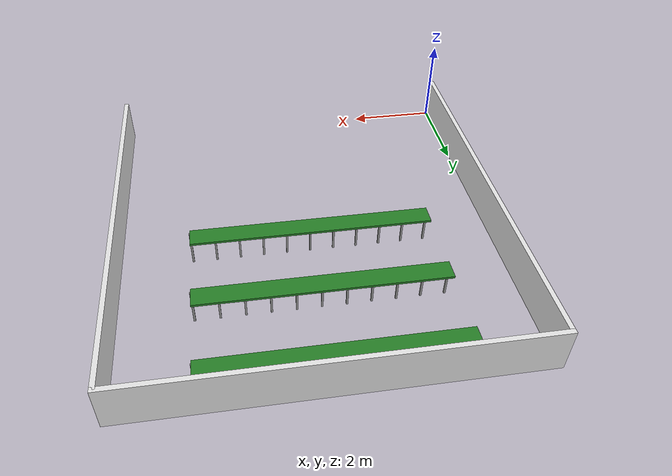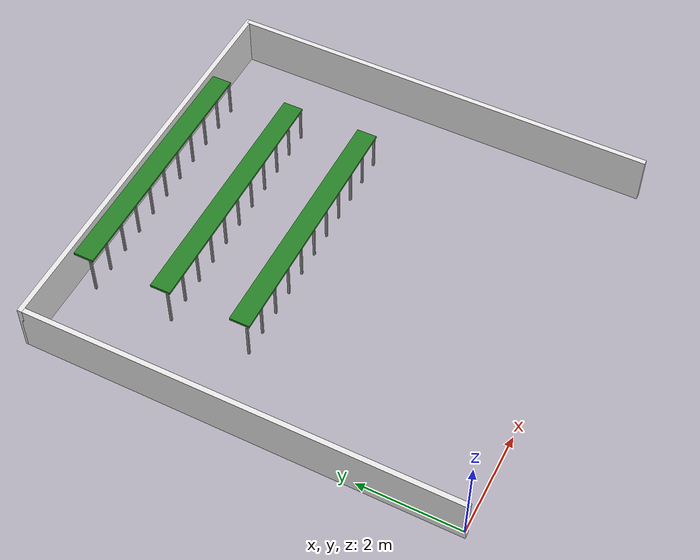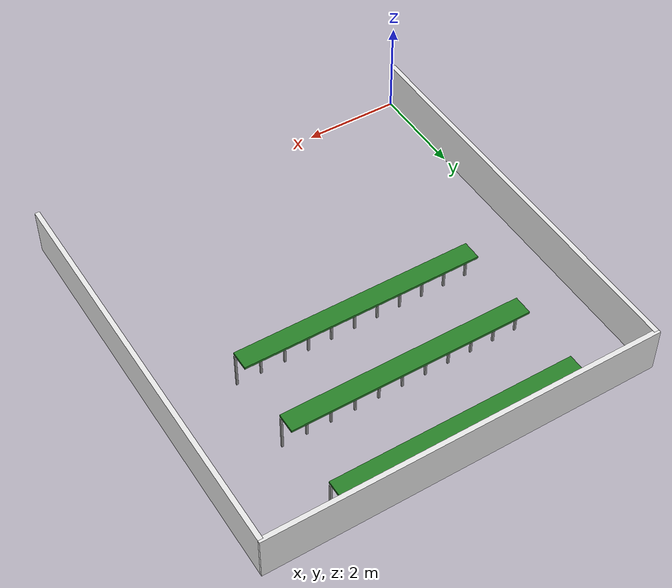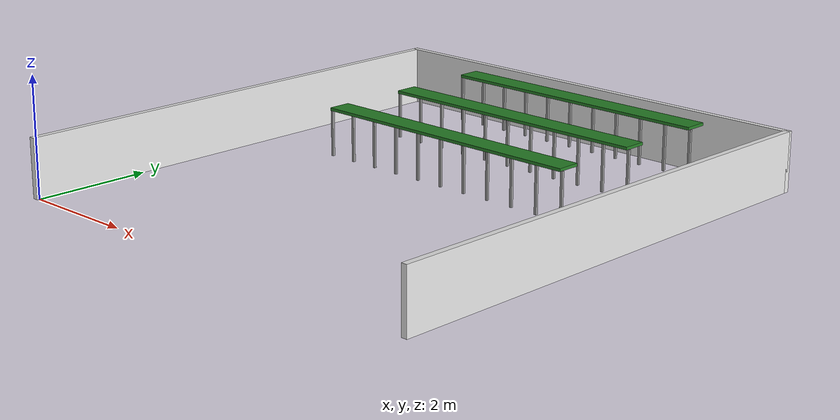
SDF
<sdf version="1.6">
 <world name="greenhouse_5corridor">
  <include><uri>model://sun</uri></include>
  <model name="wall_front">
   <static>true</static>
   <pose>-0.0500 4.2000 0.5 0 0 0</pose>
   <link name="link">
    <collision name="col"><geometry><box><size>0.1000 8.5000 1.0</size></box></geometry></collision>
    <visual name="vis">
     <geometry><box><size>0.1000 8.5000 1.0</size></box></geometry>
     <material><ambient>0.9 0.9 0.9 1</ambient></material>
    </visual>
   </link>
  </model>
  <model name="wall_back">
   <static>true</static>
   <pose>8.0500 4.2000 0.5 0 0 0</pose>
   <link name="link">
    <collision name="col"><geometry><box><size>0.1000 8.5000 1.0</size></box></geometry></collision>
    <visual name="vis">
     <geometry><box><size>0.1000 8.5000 1.0</size></box></geometry>
     <material><ambient>0.9 0.9 0.9 1</ambient></material>
    </visual>
   </link>
  </model>
  <model name="wall_right">
   <static>true</static>
   <pose>4.0000 8.4500 0.5 0 0 0</pose>
   <link name="link">
    <collision name="col"><geometry><box><size>8.2000 0.1000 1.0</size></box></geometry></collision>
    <visual name="vis">
     <geometry><box><size>8.2000 0.1000 1.0</size></box></geometry>
     <material><ambient>0.9 0.9 0.9 1</ambient></material>
    </visual>
   </link>
  </model>
  <model name="bed4_top">
   <static>true</static>
   <pose>4.0 5.0000 0.82 0 0 0</pose>
   <link name="link">
    <collision name="col"><geometry><box><size>5.0 0.4 0.05</size></box></geometry></collision>
    <visual name="vis">
     <geometry><box><size>5.0 0.4 0.05</size></box></geometry>
     <material><ambient>0.15 0.5 0.15 1</ambient><diffuse>0.15 0.5 0.15 1</diffuse></material>
    </visual>
   </link>
  </model>
  <model name="bed4_col_1">
   <static>true</static>
   <pose>1.5 4.8500 0.4 0 0 0</pose>
   <link name="link">
    <collision name="col"><geometry><box><size>0.04 0.04 0.8</size></box></geometry></collision>
    <visual name="vis">
     <geometry><box><size>0.04 0.04 0.8</size></box></geometry>
     <material><ambient>0.6 0.6 0.6 1</ambient></material>
    </visual>
   </link>
  </model>
  <model name="bed4_col_2">
   <static>true</static>
   <pose>2.0 4.8500 0.4 0 0 0</pose>
   <link name="link">
    <collision name="col"><geometry><box><size>0.04 0.04 0.8</size></box></geometry></collision>
    <visual name="vis">
     <geometry><box><size>0.04 0.04 0.8</size></box></geometry>
     <material><ambient>0.6 0.6 0.6 1</ambient></material>
    </visual>
   </link>
  </model>
  <model name="bed4_col_3">
   <static>true</static>
   <pose>2.5 4.8500 0.4 0 0 0</pose>
   <link name="link">
    <collision name="col"><geometry><box><size>0.04 0.04 0.8</size></box></geometry></collision>
    <visual name="vis">
     <geometry><box><size>0.04 0.04 0.8</size></box></geometry>
     <material><ambient>0.6 0.6 0.6 1</ambient></material>
    </visual>
   </link>
  </model>
  <model name="bed4_col_4">
   <static>true</static>
   <pose>3.0 4.8500 0.4 0 0 0</pose>
   <link name="link">
    <collision name="col"><geometry><box><size>0.04 0.04 0.8</size></box></geometry></collision>
    <visual name="vis">
     <geometry><box><size>0.04 0.04 0.8</size></box></geometry>
     <material><ambient>0.6 0.6 0.6 1</ambient></material>
    </visual>
   </link>
  </model>
  <model name="bed4_col_5">
   <static>true</static>
   <pose>3.5 4.8500 0.4 0 0 0</pose>
   <link name="link">
    <collision name="col"><geometry><box><size>0.04 0.04 0.8</size></box></geometry></collision>
    <visual name="vis">
     <geometry><box><size>0.04 0.04 0.8</size></box></geometry>
     <material><ambient>0.6 0.6 0.6 1</ambient></material>
    </visual>
   </link>
  </model>
  <model name="bed4_col_6">
   <static>true</static>
   <pose>4.0 4.8500 0.4 0 0 0</pose>
   <link name="link">
    <collision name="col"><geometry><box><size>0.04 0.04 0.8</size></box></geometry></collision>
    <visual name="vis">
     <geometry><box><size>0.04 0.04 0.8</size></box></geometry>
     <material><ambient>0.6 0.6 0.6 1</ambient></material>
    </visual>
   </link>
  </model>
  <model name="bed4_col_7">
   <static>true</static>
   <pose>4.5 4.8500 0.4 0 0 0</pose>
   <link name="link">
    <collision name="col"><geometry><box><size>0.04 0.04 0.8</size></box></geometry></collision>
    <visual name="vis">
     <geometry><box><size>0.04 0.04 0.8</size></box></geometry>
     <material><ambient>0.6 0.6 0.6 1</ambient></material>
    </visual>
   </link>
  </model>
  <model name="bed4_col_8">
   <static>true</static>
   <pose>5.0 4.8500 0.4 0 0 0</pose>
   <link name="link">
    <collision name="col"><geometry><box><size>0.04 0.04 0.8</size></box></geometry></collision>
    <visual name="vis">
     <geometry><box><size>0.04 0.04 0.8</size></box></geometry>
     <material><ambient>0.6 0.6 0.6 1</ambient></material>
    </visual>
   </link>
  </model>
  <model name="bed4_col_9">
   <static>true</static>
   <pose>5.5 4.8500 0.4 0 0 0</pose>
   <link name="link">
    <collision name="col"><geometry><box><size>0.04 0.04 0.8</size></box></geometry></collision>
    <visual name="vis">
     <geometry><box><size>0.04 0.04 0.8</size></box></geometry>
     <material><ambient>0.6 0.6 0.6 1</ambient></material>
    </visual>
   </link>
  </model>
  <model name="bed4_col_10">
   <static>true</static>
   <pose>6.0 4.8500 0.4 0 0 0</pose>
   <link name="link">
    <collision name="col"><geometry><box><size>0.04 0.04 0.8</size></box></geometry></collision>
    <visual name="vis">
     <geometry><box><size>0.04 0.04 0.8</size></box></geometry>
     <material><ambient>0.6 0.6 0.6 1</ambient></material>
    </visual>
   </link>
  </model>
  <model name="bed4_col_11">
   <static>true</static>
   <pose>6.5 4.8500 0.4 0 0 0</pose>
   <link name="link">
    <collision name="col"><geometry><box><size>0.04 0.04 0.8</size></box></geometry></collision>
    <visual name="vis">
     <geometry><box><size>0.04 0.04 0.8</size></box></geometry>
     <material><ambient>0.6 0.6 0.6 1</ambient></material>
    </visual>
   </link>
  </model>
  <model name="bed5_top">
   <static>true</static>
   <pose>4.0 6.6000 0.82 0 0 0</pose>
   <link name="link">
    <collision name="col"><geometry><box><size>5.0 0.4 0.05</size></box></geometry></collision>
    <visual name="vis">
     <geometry><box><size>5.0 0.4 0.05</size></box></geometry>
     <material><ambient>0.15 0.5 0.15 1</ambient><diffuse>0.15 0.5 0.15 1</diffuse></material>
    </visual>
   </link>
  </model>
  <model name="bed5_col_1">
   <static>true</static>
   <pose>1.5 6.4500 0.4 0 0 0</pose>
   <link name="link">
    <collision name="col"><geometry><box><size>0.04 0.04 0.8</size></box></geometry></collision>
    <visual name="vis">
     <geometry><box><size>0.04 0.04 0.8</size></box></geometry>
     <material><ambient>0.6 0.6 0.6 1</ambient></material>
    </visual>
   </link>
  </model>
  <model name="bed5_col_2">
   <static>true</static>
   <pose>2.0 6.4500 0.4 0 0 0</pose>
   <link name="link">
    <collision name="col"><geometry><box><size>0.04 0.04 0.8</size></box></geometry></collision>
    <visual name="vis">
     <geometry><box><size>0.04 0.04 0.8</size></box></geometry>
     <material><ambient>0.6 0.6 0.6 1</ambient></material>
    </visual>
   </link>
  </model>
  <model name="bed5_col_3">
   <static>true</static>
   <pose>2.5 6.4500 0.4 0 0 0</pose>
   <link name="link">
    <collision name="col"><geometry><box><size>0.04 0.04 0.8</size></box></geometry></collision>
    <visual name="vis">
     <geometry><box><size>0.04 0.04 0.8</size></box></geometry>
     <material><ambient>0.6 0.6 0.6 1</ambient></material>
    </visual>
   </link>
  </model>
  <model name="bed5_col_4">
   <static>true</static>
   <pose>3.0 6.4500 0.4 0 0 0</pose>
   <link name="link">
    <collision name="col"><geometry><box><size>0.04 0.04 0.8</size></box></geometry></collision>
    <visual name="vis">
     <geometry><box><size>0.04 0.04 0.8</size></box></geometry>
     <material><ambient>0.6 0.6 0.6 1</ambient></material>
    </visual>
   </link>
  </model>
  <model name="bed5_col_5">
   <static>true</static>
   <pose>3.5 6.4500 0.4 0 0 0</pose>
   <link name="link">
    <collision name="col"><geometry><box><size>0.04 0.04 0.8</size></box></geometry></collision>
    <visual name="vis">
     <geometry><box><size>0.04 0.04 0.8</size></box></geometry>
     <material><ambient>0.6 0.6 0.6 1</ambient></material>
    </visual>
   </link>
  </model>
  <model name="bed5_col_6">
   <static>true</static>
   <pose>4.0 6.4500 0.4 0 0 0</pose>
   <link name="link">
    <collision name="col"><geometry><box><size>0.04 0.04 0.8</size></box></geometry></collision>
    <visual name="vis">
     <geometry><box><size>0.04 0.04 0.8</size></box></geometry>
     <material><ambient>0.6 0.6 0.6 1</ambient></material>
    </visual>
   </link>
  </model>
  <model name="bed5_col_7">
   <static>true</static>
   <pose>4.5 6.4500 0.4 0 0 0</pose>
   <link name="link">
    <collision name="col"><geometry><box><size>0.04 0.04 0.8</size></box></geometry></collision>
    <visual name="vis">
     <geometry><box><size>0.04 0.04 0.8</size></box></geometry>
     <material><ambient>0.6 0.6 0.6 1</ambient></material>
    </visual>
   </link>
  </model>
  <model name="bed5_col_8">
   <static>true</static>
   <pose>5.0 6.4500 0.4 0 0 0</pose>
   <link name="link">
    <collision name="col"><geometry><box><size>0.04 0.04 0.8</size></box></geometry></collision>
    <visual name="vis">
     <geometry><box><size>0.04 0.04 0.8</size></box></geometry>
     <material><ambient>0.6 0.6 0.6 1</ambient></material>
    </visual>
   </link>
  </model>
  <model name="bed5_col_9">
   <static>true</static>
   <pose>5.5 6.4500 0.4 0 0 0</pose>
   <link name="link">
    <collision name="col"><geometry><box><size>0.04 0.04 0.8</size></box></geometry></collision>
    <visual name="vis">
     <geometry><box><size>0.04 0.04 0.8</size></box></geometry>
     <material><ambient>0.6 0.6 0.6 1</ambient></material>
    </visual>
   </link>
  </model>
  <model name="bed5_col_10">
   <static>true</static>
   <pose>6.0 6.4500 0.4 0 0 0</pose>
   <link name="link">
    <collision name="col"><geometry><box><size>0.04 0.04 0.8</size></box></geometry></collision>
    <visual name="vis">
     <geometry><box><size>0.04 0.04 0.8</size></box></geometry>
     <material><ambient>0.6 0.6 0.6 1</ambient></material>
    </visual>
   </link>
  </model>
  <model name="bed5_col_11">
   <static>true</static>
   <pose>6.5 6.4500 0.4 0 0 0</pose>
   <link name="link">
    <collision name="col"><geometry><box><size>0.04 0.04 0.8</size></box></geometry></collision>
    <visual name="vis">
     <geometry><box><size>0.04 0.04 0.8</size></box></geometry>
     <material><ambient>0.6 0.6 0.6 1</ambient></material>
    </visual>
   </link>
  </model>
  <model name="bed6_top">
   <static>true</static>
   <pose>4.0 8.2000 0.82 0 0 0</pose>
   <link name="link">
    <collision name="col"><geometry><box><size>5.0 0.4 0.05</size></box></geometry></collision>
    <visual name="vis">
     <geometry><box><size>5.0 0.4 0.05</size></box></geometry>
     <material><ambient>0.15 0.5 0.15 1</ambient><diffuse>0.15 0.5 0.15 1</diffuse></material>
    </visual>
   </link>
  </model>
  <model name="bed6_col_1">
   <static>true</static>
   <pose>1.5 8.0500 0.4 0 0 0</pose>
   <link name="link">
    <collision name="col"><geometry><box><size>0.04 0.04 0.8</size></box></geometry></collision>
    <visual name="vis">
     <geometry><box><size>0.04 0.04 0.8</size></box></geometry>
     <material><ambient>0.6 0.6 0.6 1</ambient></material>
    </visual>
   </link>
  </model>
  <model name="bed6_col_2">
   <static>true</static>
   <pose>2.0 8.0500 0.4 0 0 0</pose>
   <link name="link">
    <collision name="col"><geometry><box><size>0.04 0.04 0.8</size></box></geometry></collision>
    <visual name="vis">
     <geometry><box><size>0.04 0.04 0.8</size></box></geometry>
     <material><ambient>0.6 0.6 0.6 1</ambient></material>
    </visual>
   </link>
  </model>
  <model name="bed6_col_3">
   <static>true</static>
   <pose>2.5 8.0500 0.4 0 0 0</pose>
   <link name="link">
    <collision name="col"><geometry><box><size>0.04 0.04 0.8</size></box></geometry></collision>
    <visual name="vis">
     <geometry><box><size>0.04 0.04 0.8</size></box></geometry>
     <material><ambient>0.6 0.6 0.6 1</ambient></material>
    </visual>
   </link>
  </model>
  <model name="bed6_col_4">
   <static>true</static>
   <pose>3.0 8.0500 0.4 0 0 0</pose>
   <link name="link">
    <collision name="col"><geometry><box><size>0.04 0.04 0.8</size></box></geometry></collision>
    <visual name="vis">
     <geometry><box><size>0.04 0.04 0.8</size></box></geometry>
     <material><ambient>0.6 0.6 0.6 1</ambient></material>
    </visual>
   </link>
  </model>
  <model name="bed6_col_5">
   <static>true</static>
   <pose>3.5 8.0500 0.4 0 0 0</pose>
   <link name="link">
    <collision name="col"><geometry><box><size>0.04 0.04 0.8</size></box></geometry></collision>
    <visual name="vis">
     <geometry><box><size>0.04 0.04 0.8</size></box></geometry>
     <material><ambient>0.6 0.6 0.6 1</ambient></material>
    </visual>
   </link>
  </model>
  <model name="bed6_col_6">
   <static>true</static>
   <pose>4.0 8.0500 0.4 0 0 0</pose>
   <link name="link">
    <collision name="col"><geometry><box><size>0.04 0.04 0.8</size></box></geometry></collision>
    <visual name="vis">
     <geometry><box><size>0.04 0.04 0.8</size></box></geometry>
     <material><ambient>0.6 0.6 0.6 1</ambient></material>
    </visual>
   </link>
  </model>
  <model name="bed6_col_7">
   <static>true</static>
   <pose>4.5 8.0500 0.4 0 0 0</pose>
   <link name="link">
    <collision name="col"><geometry><box><size>0.04 0.04 0.8</size></box></geometry></collision>
    <visual name="vis">
     <geometry><box><size>0.04 0.04 0.8</size></box></geometry>
     <material><ambient>0.6 0.6 0.6 1</ambient></material>
    </visual>
   </link>
  </model>
  <model name="bed6_col_8">
   <static>true</static>
   <pose>5.0 8.0500 0.4 0 0 0</pose>
   <link name="link">
    <collision name="col"><geometry><box><size>0.04 0.04 0.8</size></box></geometry></collision>
    <visual name="vis">
     <geometry><box><size>0.04 0.04 0.8</size></box></geometry>
     <material><ambient>0.6 0.6 0.6 1</ambient></material>
    </visual>
   </link>
  </model>
  <model name="bed6_col_9">
   <static>true</static>
   <pose>5.5 8.0500 0.4 0 0 0</pose>
   <link name="link">
    <collision name="col"><geometry><box><size>0.04 0.04 0.8</size></box></geometry></collision>
    <visual name="vis">
     <geometry><box><size>0.04 0.04 0.8</size></box></geometry>
     <material><ambient>0.6 0.6 0.6 1</ambient></material>
    </visual>
   </link>
  </model>
  <model name="bed6_col_10">
   <static>true</static>
   <pose>6.0 8.0500 0.4 0 0 0</pose>
   <link name="link">
    <collision name="col"><geometry><box><size>0.04 0.04 0.8</size></box></geometry></collision>
    <visual name="vis">
     <geometry><box><size>0.04 0.04 0.8</size></box></geometry>
     <material><ambient>0.6 0.6 0.6 1</ambient></material>
    </visual>
   </link>
  </model>
  <model name="bed6_col_11">
   <static>true</static>
   <pose>6.5 8.0500 0.4 0 0 0</pose>
   <link name="link">
    <collision name="col"><geometry><box><size>0.04 0.04 0.8</size></box></geometry></collision>
    <visual name="vis">
     <geometry><box><size>0.04 0.04 0.8</size></box></geometry>
     <material><ambient>0.6 0.6 0.6 1</ambient></material>
    </visual>
   </link>
  </model>
 </world>
</sdf>
